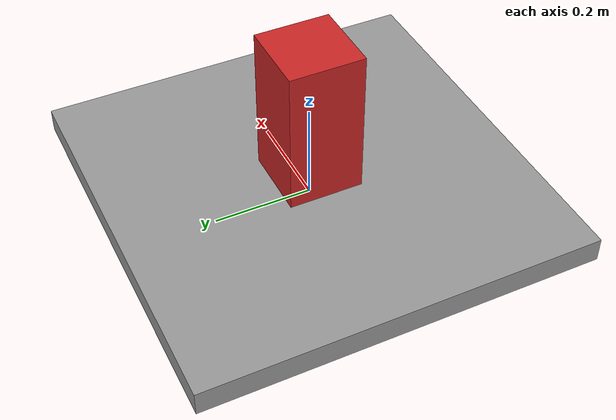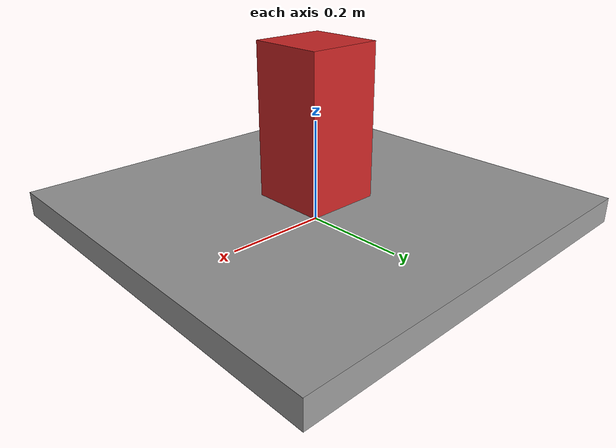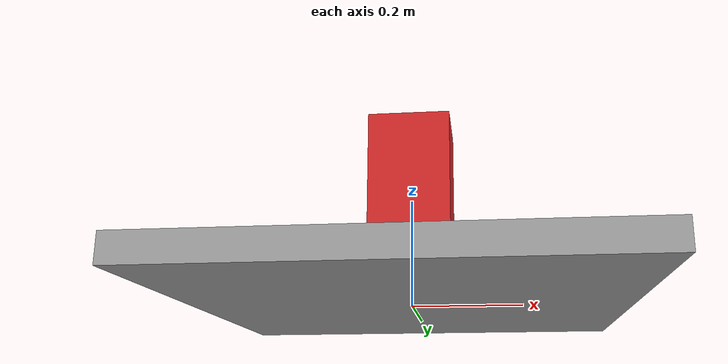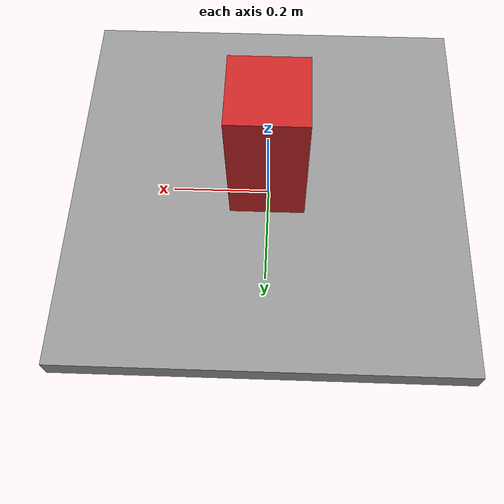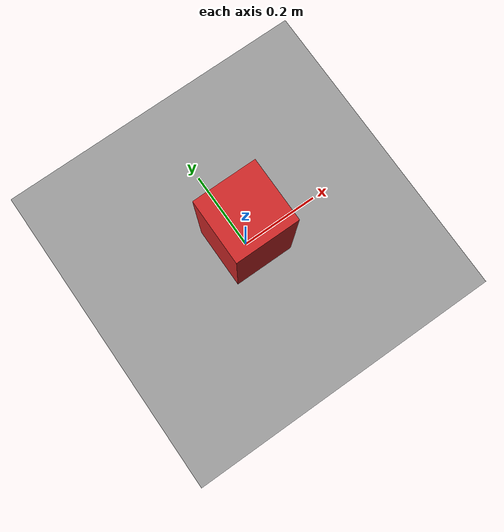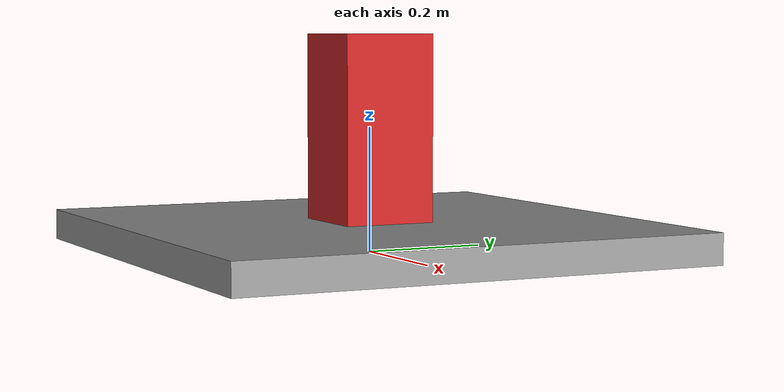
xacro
<?xml version="1.0"?>
<!-- Two mass jumper -->
<robot name="tmj" xmlns:xacro="http://www.ros.org/wiki/xacro">

  <!-- Constants for robot dimensions -->
  <xacro:property name="PI" value="3.1415926535897931"/>
  <xacro:property name="body_mass" value="5" />
  <xacro:property name="body_width" value="0.15" />
  <xacro:property name="body_height" value="0.3" />

  <xacro:property name="foot_mass" value="1.1" />
  <xacro:property name="foot_width" value="0.8" />
  <xacro:property name="foot_height" value="0.05" />

  <!-- Import all Gazebo-customization elements, including Gazebo colors -->
  <xacro:include filename="$(find tmj_description)/urdf/tmj.gazebo" />
  <!-- Import Rviz colors -->
  <xacro:include filename="$(find tmj_description)/urdf/materials.xacro" />

  <!-- Used for fixing robot to Gazebo 'base_link' -->

  <link name='body'>
    <collision name='collision'>
      <origin xyz="0 0 ${body_height/2}" rpy="0 0 0"/>
      <geometry>
        <box size="${body_width} ${body_width} ${body_height}" />
      </geometry>
    </collision>

    <visual name='visual'>
      <origin xyz="0 0 ${body_height/2}" rpy="0 0 0"/>
      <geometry>
        <box size="${body_width} ${body_width} ${body_height}" />
      </geometry>
    </visual>

    <inertial name='inertial'>
      <origin xyz="0 0 ${body_height/2}" rpy="0 0 0"/>
      <mass value="${body_mass}" />
      <inertia ixx="${1/12*body_mass*(body_height*body_height+body_width*body_width)}" ixy="0" ixz="0"
          iyy="${1/12*body_mass*(body_height*body_height+body_width*body_width)}" iyz="0"
          izz="${1/6*body_mass*body_width*body_width}" />
    </inertial>
  </link>

  <link name='foot'>
    <collision name='collision'>
      <origin xyz="0 0 ${foot_height/2}" rpy="0 0 0"/>
      <geometry>
        <box size="${foot_width} ${foot_width} ${foot_height}" />
      </geometry>
    </collision>

    <visual name='visual'>
      <origin xyz="0 0 ${foot_height/2}" rpy="0 0 0"/>
      <geometry>
        <box size="${foot_width} ${foot_width} ${foot_height}" />
      </geometry>
    </visual>

    <inertial name='inertial'>
      <origin xyz="0 0 ${foot_height/2}" rpy="0 0 0"/>
      <mass value="${foot_mass}" />
      <inertia ixx="${1/12*foot_mass*(foot_height*foot_height+foot_width*foot_width)}" ixy="0" ixz="0"
          iyy="${1/12*foot_mass*(foot_height*foot_height+foot_width*foot_width)}" iyz="0"
          izz="${1/6*foot_mass*foot_width*foot_width}" />
    </inertial>
  </link>

  <!-- Joints -->
  <joint name="spring_axis" type="prismatic">
    <origin xyz="0 0 ${foot_height}" rpy="0 0 0"/>
    <axis xyz="0 0 1"/>
    <parent link="foot"/>
    <child link="body"/>
    <dynamics damping="0.1" friction="0.0"/>
    <limit effort="2000" lower="0" upper="2" velocity="12"/>
    <safety_controller k_position="100" k_velocity="10" soft_lower_limit="0.05" soft_upper_limit="1.95"/>
  </joint>

  <transmission name="spring_axis_tran">
    <type>transmission_interface/SimpleTransmission</type>
    <joint name="spring_axis"/>
    <actuator name="spring">
      <hardwareInterface>EffortJointInterface</hardwareInterface>
      <mechanicalReduction>1</mechanicalReduction>
    </actuator>
  </transmission>

</robot>
